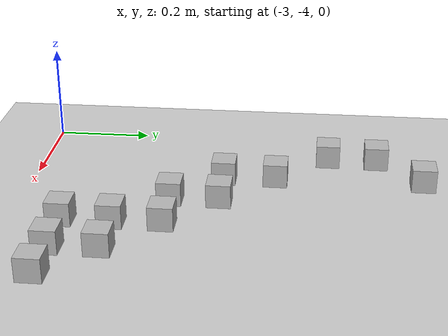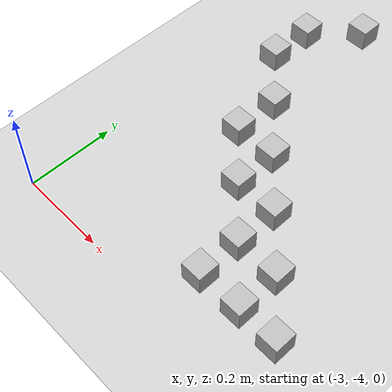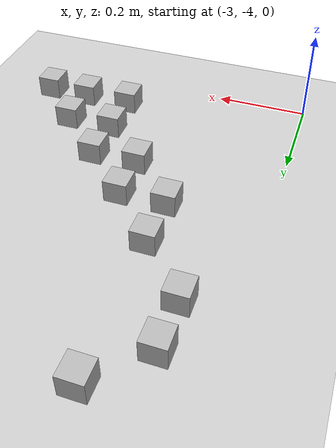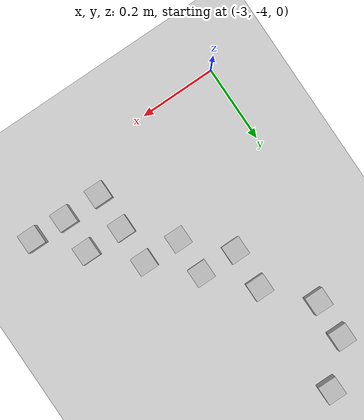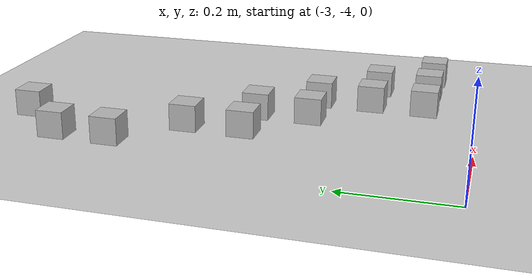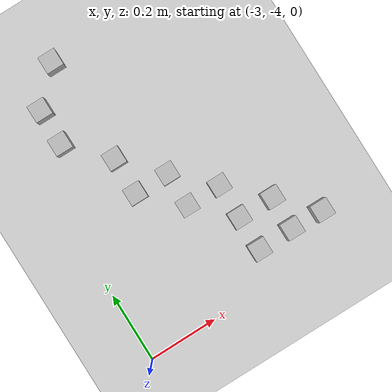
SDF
<sdf version="1.6">
 <world name="default">
  <model name="ground_plane">
   <static>1</static>
   <link name="link">
    <collision name="collision">
     <geometry><plane><normal>0 0 1</normal><size>100 100</size></plane></geometry>
     <surface><friction><ode><mu>100</mu><mu2>50</mu2></ode></friction></surface>
    </collision>
    <visual name="visual">
     <cast_shadows>0</cast_shadows>
     <geometry><plane><normal>0 0 1</normal><size>100 100</size></plane></geometry>
     <material>
      <script><uri>file://media/materials/scripts/gazebo.material</uri><name>Gazebo/Grey</name></script>
     </material>
    </visual>
   </link>
  </model>
  <model name="at204">
   <static>0</static>
   <link name="link">
    <inertial>
     <mass>0.01</mass>
     <inertia><ixx>4e-05</ixx><ixy>0</ixy><ixz>0</ixz><iyy>4e-05</iyy><iyz>0</iyz><izz>4e-05</izz></inertia>
    </inertial>
    <visual name="visual">
     <geometry><box><size>0.05 0.05 0.05</size></box></geometry>
     <material>
      <script>
       <uri>model://at0/materials/scripts</uri>
       <uri>model://at0/materials/textures</uri>
       <name>at0/Diffuse</name>
      </script>
     </material>
    </visual>
    <collision name="collision">
     <geometry><box><size>0.05 0.05 0.05</size></box></geometry>
     <surface><friction><ode><mu>0.8</mu><mu2>0.7</mu2></ode></friction></surface>
    </collision>
   </link>
   <pose>-2.89637 -3.28036 0.025 0 -0 0</pose>
  </model>
  <model name="at217">
   <static>0</static>
   <link name="link">
    <inertial>
     <mass>0.01</mass>
     <inertia><ixx>4e-05</ixx><ixy>0</ixy><ixz>0</ixz><iyy>4e-05</iyy><iyz>0</iyz><izz>4e-05</izz></inertia>
    </inertial>
    <visual name="visual">
     <geometry><box><size>0.05 0.05 0.05</size></box></geometry>
     <material>
      <script>
       <uri>model://at0/materials/scripts</uri>
       <uri>model://at0/materials/textures</uri>
       <name>at0/Diffuse</name>
      </script>
     </material>
    </visual>
    <collision name="collision">
     <geometry><box><size>0.05 0.05 0.05</size></box></geometry>
     <surface><friction><ode><mu>0.8</mu><mu2>0.7</mu2></ode></friction></surface>
    </collision>
   </link>
   <pose>-2.40503 -3.89989 0.025 0 -0 0</pose>
  </model>
  <model name="at229">
   <static>0</static>
   <link name="link">
    <inertial>
     <mass>0.01</mass>
     <inertia><ixx>4e-05</ixx><ixy>0</ixy><ixz>0</ixz><iyy>4e-05</iyy><iyz>0</iyz><izz>4e-05</izz></inertia>
    </inertial>
    <visual name="visual">
     <geometry><box><size>0.05 0.05 0.05</size></box></geometry>
     <material>
      <script>
       <uri>model://at0/materials/scripts</uri>
       <uri>model://at0/materials/textures</uri>
       <name>at0/Diffuse</name>
      </script>
     </material>
    </visual>
    <collision name="collision">
     <geometry><box><size>0.05 0.05 0.05</size></box></geometry>
     <surface><friction><ode><mu>0.8</mu><mu2>0.7</mu2></ode></friction></surface>
    </collision>
   </link>
   <pose>-2.49797 -3.89823 0.025 0 -0 0</pose>
  </model>
  <model name="at231">
   <static>0</static>
   <link name="link">
    <inertial>
     <mass>0.01</mass>
     <inertia><ixx>4e-05</ixx><ixy>0</ixy><ixz>0</ixz><iyy>4e-05</iyy><iyz>0</iyz><izz>4e-05</izz></inertia>
    </inertial>
    <visual name="visual">
     <geometry><box><size>0.05 0.05 0.05</size></box></geometry>
     <material>
      <script>
       <uri>model://at0/materials/scripts</uri>
       <uri>model://at0/materials/textures</uri>
       <name>at0/Diffuse</name>
      </script>
     </material>
    </visual>
    <collision name="collision">
     <geometry><box><size>0.05 0.05 0.05</size></box></geometry>
     <surface><friction><ode><mu>0.8</mu><mu2>0.7</mu2></ode></friction></surface>
    </collision>
   </link>
   <pose>-2.6 -3.9 0.025 0 -0 0</pose>
  </model>
  <model name="at237">
   <static>0</static>
   <link name="link">
    <inertial>
     <mass>0.01</mass>
     <inertia><ixx>4e-05</ixx><ixy>0</ixy><ixz>0</ixz><iyy>4e-05</iyy><iyz>0</iyz><izz>4e-05</izz></inertia>
    </inertial>
    <visual name="visual">
     <geometry><box><size>0.05 0.05 0.05</size></box></geometry>
     <material>
      <script>
       <uri>model://at0/materials/scripts</uri>
       <uri>model://at0/materials/textures</uri>
       <name>at0/Diffuse</name>
      </script>
     </material>
    </visual>
    <collision name="collision">
     <geometry><box><size>0.05 0.05 0.05</size></box></geometry>
     <surface><friction><ode><mu>0.8</mu><mu2>0.7</mu2></ode></friction></surface>
    </collision>
   </link>
   <pose>-2.49804 -3.80106 0.025 0 -0 0</pose>
  </model>
  <model name="at238">
   <static>0</static>
   <link name="link">
    <inertial>
     <mass>0.01</mass>
     <inertia><ixx>4e-05</ixx><ixy>0</ixy><ixz>0</ixz><iyy>4e-05</iyy><iyz>0</iyz><izz>4e-05</izz></inertia>
    </inertial>
    <visual name="visual">
     <geometry><box><size>0.05 0.05 0.05</size></box></geometry>
     <material>
      <script>
       <uri>model://at0/materials/scripts</uri>
       <uri>model://at0/materials/textures</uri>
       <name>at0/Diffuse</name>
      </script>
     </material>
    </visual>
    <collision name="collision">
     <geometry><box><size>0.05 0.05 0.05</size></box></geometry>
     <surface><friction><ode><mu>0.8</mu><mu2>0.7</mu2></ode></friction></surface>
    </collision>
   </link>
   <pose>-2.79844 -3.49219 0.025 0 -0 0</pose>
  </model>
  <model name="at239">
   <static>0</static>
   <link name="link">
    <inertial>
     <mass>0.01</mass>
     <inertia><ixx>4e-05</ixx><ixy>0</ixy><ixz>0</ixz><iyy>4e-05</iyy><iyz>0</iyz><izz>4e-05</izz></inertia>
    </inertial>
    <visual name="visual">
     <geometry><box><size>0.05 0.05 0.05</size></box></geometry>
     <material>
      <script>
       <uri>model://at0/materials/scripts</uri>
       <uri>model://at0/materials/textures</uri>
       <name>at0/Diffuse</name>
      </script>
     </material>
    </visual>
    <collision name="collision">
     <geometry><box><size>0.05 0.05 0.05</size></box></geometry>
     <surface><friction><ode><mu>0.8</mu><mu2>0.7</mu2></ode></friction></surface>
    </collision>
   </link>
   <pose>-2.6 -3.8 0.025 0 -0 0</pose>
  </model>
  <model name="at245">
   <static>0</static>
   <link name="link">
    <inertial>
     <mass>0.01</mass>
     <inertia><ixx>4e-05</ixx><ixy>0</ixy><ixz>0</ixz><iyy>4e-05</iyy><iyz>0</iyz><izz>4e-05</izz></inertia>
    </inertial>
    <visual name="visual">
     <geometry><box><size>0.05 0.05 0.05</size></box></geometry>
     <material>
      <script>
       <uri>model://at0/materials/scripts</uri>
       <uri>model://at0/materials/textures</uri>
       <name>at0/Diffuse</name>
      </script>
     </material>
    </visual>
    <collision name="collision">
     <geometry><box><size>0.05 0.05 0.05</size></box></geometry>
     <surface><friction><ode><mu>0.8</mu><mu2>0.7</mu2></ode></friction></surface>
    </collision>
   </link>
   <pose>-2.89817 -3.38368 0.025 0 -0 0</pose>
  </model>
  <model name="at246">
   <static>0</static>
   <link name="link">
    <inertial>
     <mass>0.01</mass>
     <inertia><ixx>4e-05</ixx><ixy>0</ixy><ixz>0</ixz><iyy>4e-05</iyy><iyz>0</iyz><izz>4e-05</izz></inertia>
    </inertial>
    <visual name="visual">
     <geometry><box><size>0.05 0.05 0.05</size></box></geometry>
     <material>
      <script>
       <uri>model://at0/materials/scripts</uri>
       <uri>model://at0/materials/textures</uri>
       <name>at0/Diffuse</name>
      </script>
     </material>
    </visual>
    <collision name="collision">
     <geometry><box><size>0.05 0.05 0.05</size></box></geometry>
     <surface><friction><ode><mu>0.8</mu><mu2>0.7</mu2></ode></friction></surface>
    </collision>
   </link>
   <pose>-2.7 -3.7 0.025 0 -0 0</pose>
  </model>
  <model name="at247">
   <static>0</static>
   <link name="link">
    <inertial>
     <mass>0.01</mass>
     <inertia><ixx>4e-05</ixx><ixy>0</ixy><ixz>0</ixz><iyy>4e-05</iyy><iyz>0</iyz><izz>4e-05</izz></inertia>
    </inertial>
    <visual name="visual">
     <geometry><box><size>0.05 0.05 0.05</size></box></geometry>
     <material>
      <script>
       <uri>model://at0/materials/scripts</uri>
       <uri>model://at0/materials/textures</uri>
       <name>at0/Diffuse</name>
      </script>
     </material>
    </visual>
    <collision name="collision">
     <geometry><box><size>0.05 0.05 0.05</size></box></geometry>
     <surface><friction><ode><mu>0.8</mu><mu2>0.7</mu2></ode></friction></surface>
    </collision>
   </link>
   <pose>-2.6 -3.7 0.025 0 -0 0</pose>
  </model>
  <model name="at253">
   <static>0</static>
   <link name="link">
    <inertial>
     <mass>0.01</mass>
     <inertia><ixx>4e-05</ixx><ixy>0</ixy><ixz>0</ixz><iyy>4e-05</iyy><iyz>0</iyz><izz>4e-05</izz></inertia>
    </inertial>
    <visual name="visual">
     <geometry><box><size>0.05 0.05 0.05</size></box></geometry>
     <material>
      <script>
       <uri>model://at0/materials/scripts</uri>
       <uri>model://at0/materials/textures</uri>
       <name>at0/Diffuse</name>
      </script>
     </material>
    </visual>
    <collision name="collision">
     <geometry><box><size>0.05 0.05 0.05</size></box></geometry>
     <surface><friction><ode><mu>0.8</mu><mu2>0.7</mu2></ode></friction></surface>
    </collision>
   </link>
   <pose>-2.8 -3.6 0.025 0 -0 0</pose>
  </model>
  <model name="at254">
   <static>0</static>
   <link name="link">
    <inertial>
     <mass>0.01</mass>
     <inertia><ixx>4e-05</ixx><ixy>0</ixy><ixz>0</ixz><iyy>4e-05</iyy><iyz>0</iyz><izz>4e-05</izz></inertia>
    </inertial>
    <visual name="visual">
     <geometry><box><size>0.05 0.05 0.05</size></box></geometry>
     <material>
      <script>
       <uri>model://at0/materials/scripts</uri>
       <uri>model://at0/materials/textures</uri>
       <name>at0/Diffuse</name>
      </script>
     </material>
    </visual>
    <collision name="collision">
     <geometry><box><size>0.05 0.05 0.05</size></box></geometry>
     <surface><friction><ode><mu>0.8</mu><mu2>0.7</mu2></ode></friction></surface>
    </collision>
   </link>
   <pose>-2.7 -3.6 0.025 0 -0 0</pose>
  </model>
  <model name="at255">
   <static>0</static>
   <link name="link">
    <inertial>
     <mass>0.01</mass>
     <inertia><ixx>4e-05</ixx><ixy>0</ixy><ixz>0</ixz><iyy>4e-05</iyy><iyz>0</iyz><izz>4e-05</izz></inertia>
    </inertial>
    <visual name="visual">
     <geometry><box><size>0.05 0.05 0.05</size></box></geometry>
     <material>
      <script>
       <uri>model://at0/materials/scripts</uri>
       <uri>model://at0/materials/textures</uri>
       <name>at0/Diffuse</name>
      </script>
     </material>
    </visual>
    <collision name="collision">
     <geometry><box><size>0.05 0.05 0.05</size></box></geometry>
     <surface><friction><ode><mu>0.8</mu><mu2>0.7</mu2></ode></friction></surface>
    </collision>
   </link>
   <pose>-2.80331 -3.1864 0.025 0 -0 0</pose>
  </model>
 </world>
</sdf>
